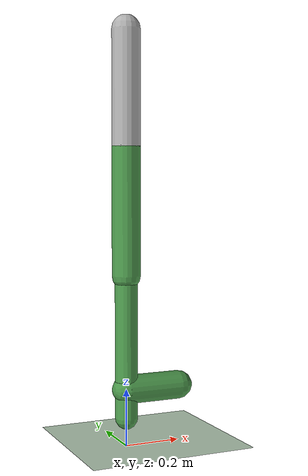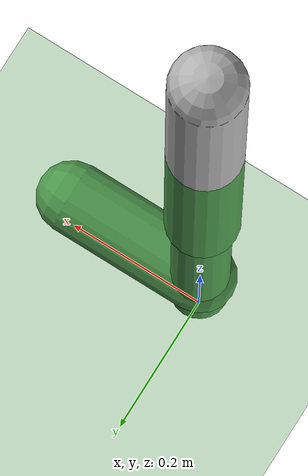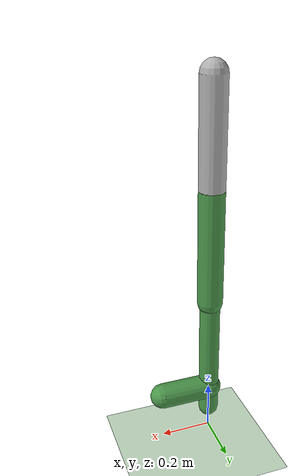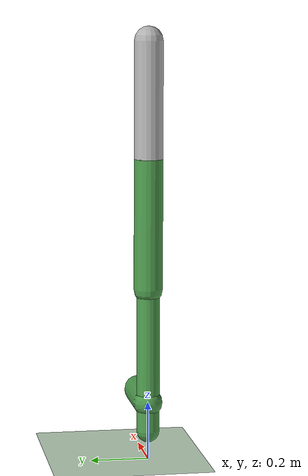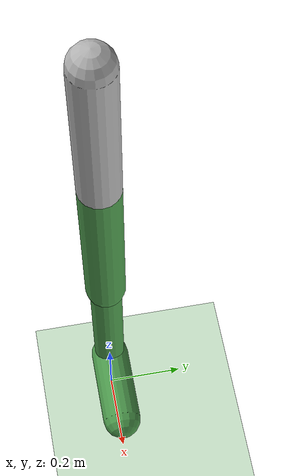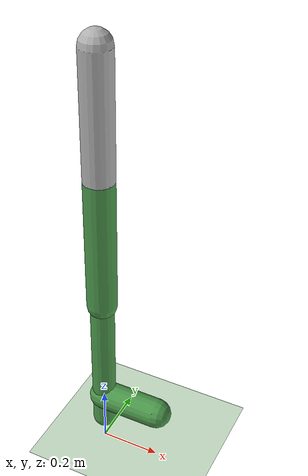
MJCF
<mujoco model="walker2d">
  <compiler angle="radian" inertiafromgeom="true"/>

  <default>
    <joint armature="0.01" damping="0.1" limited="true"/>
    <geom conaffinity="0" condim="3" contype="1" density="1000" friction="0.7 0.1 0.1"/>
  </default>

  <option timestep="0.005" iterations="4" ls_iterations="4" solver="Newton" jacobian="dense" integrator="Euler">
    <flag energy="enable"/>
  </option>

  <worldbody>
    <light pos="0 0 2" dir="0 0 -1"/>
    <geom name="floor" type="plane" size="40 40 0.05" rgba="0.8 0.9 0.8 1"/>

    <body name="torso" pos="0 0 1.25">
      <joint name="rootx" type="slide" axis="1 0 0" limited="false" pos="0 0 0" armature="0" damping="0"/>
      <joint name="rootz" type="slide" axis="0 0 1" limited="false" pos="0 0 0" armature="0" damping="0"/>
      <joint name="rooty" type="hinge" axis="0 1 0" limited="false" pos="0 0 0" armature="0" damping="0"/>
      <geom name="torso_geom" type="capsule" size="0.05 0.2" rgba="0.7 0.7 0.7 1"/>

      <body name="right_thigh" pos="0 0 -0.2">
        <joint name="right_hip" type="hinge" axis="0 1 0" range="-1.0 1.0"/>
        <geom name="right_thigh_geom" type="capsule" size="0.05 0.225" pos="0 0 -0.225" rgba="0.3 0.6 0.3 1"/>
        <body name="right_shin" pos="0 0 -0.45">
          <joint name="right_knee" type="hinge" axis="0 1 0" range="-1.5 0"/>
          <geom name="right_shin_geom" type="capsule" size="0.04 0.25" pos="0 0 -0.25" rgba="0.3 0.6 0.3 1"/>
          <body name="right_foot" pos="0 0 -0.5">
            <joint name="right_ankle" type="hinge" axis="0 1 0" range="-0.75 0.75"/>
            <geom name="right_foot_geom" type="capsule" size="0.05 0.1" pos="0.1 0 0.1" zaxis="1 0 0" rgba="0.3 0.6 0.3 1"/>
          </body>
        </body>
      </body>

      <body name="left_thigh" pos="0 0 -0.2">
        <joint name="left_hip" type="hinge" axis="0 1 0" range="-1.0 1.0"/>
        <geom name="left_thigh_geom" type="capsule" size="0.05 0.225" pos="0 0 -0.225" rgba="0.3 0.3 0.6 1"/>
        <body name="left_shin" pos="0 0 -0.45">
          <joint name="left_knee" type="hinge" axis="0 1 0" range="-1.5 0"/>
          <geom name="left_shin_geom" type="capsule" size="0.04 0.25" pos="0 0 -0.25" rgba="0.3 0.3 0.6 1"/>
          <body name="left_foot" pos="0 0 -0.5">
            <joint name="left_ankle" type="hinge" axis="0 1 0" range="-0.75 0.75"/>
            <geom name="left_foot_geom" type="capsule" size="0.05 0.1" pos="0.1 0 0.1" zaxis="1 0 0" rgba="0.3 0.3 0.6 1"/>
          </body>
        </body>
      </body>
    </body>
  </worldbody>

  <actuator>
    <motor name="right_hip" joint="right_hip" gear="100" ctrlrange="-1 1"/>
    <motor name="right_knee" joint="right_knee" gear="50" ctrlrange="-1 1"/>
    <motor name="right_ankle" joint="right_ankle" gear="20" ctrlrange="-1 1"/>
    <motor name="left_hip" joint="left_hip" gear="100" ctrlrange="-1 1"/>
    <motor name="left_knee" joint="left_knee" gear="50" ctrlrange="-1 1"/>
    <motor name="left_ankle" joint="left_ankle" gear="20" ctrlrange="-1 1"/>
  </actuator>
</mujoco>
